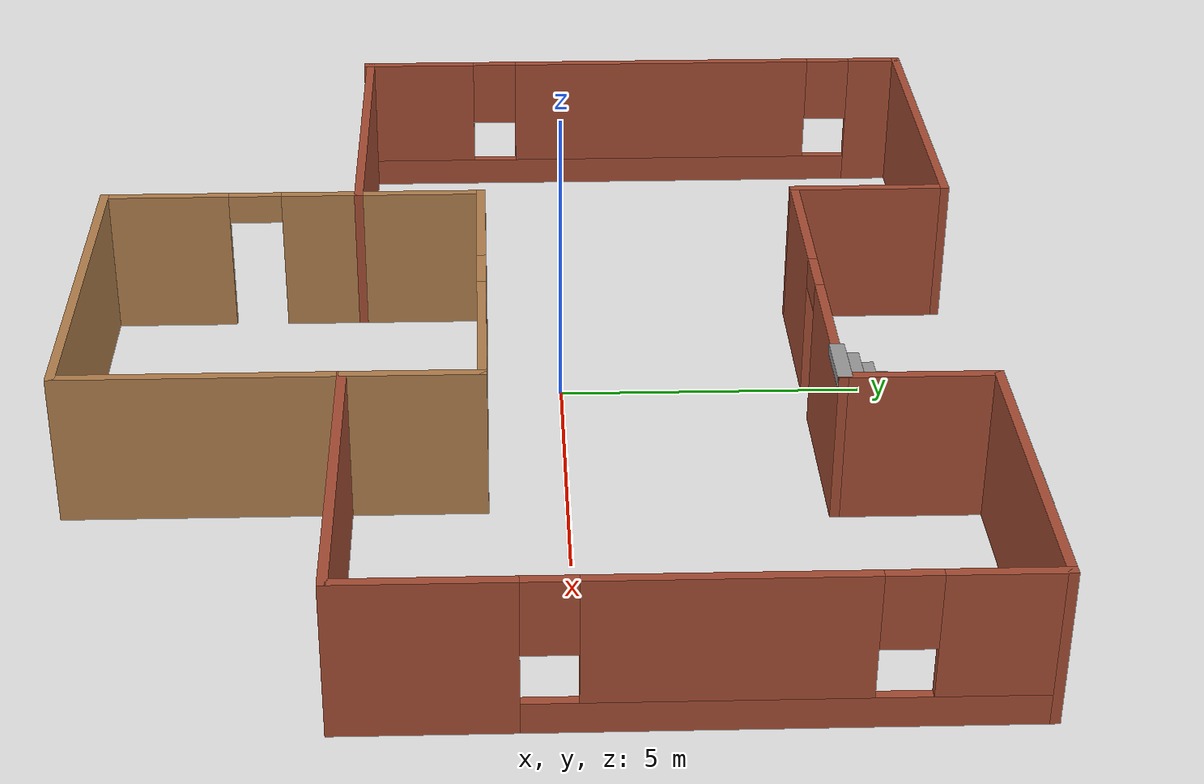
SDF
<?xml version='1.0'?>
<sdf version='1.6'>
  <model name='building'>
    <pose frame=''>0.327964 -0.152465 0 0 -0 0</pose>
    <link name='Stairs_1'>
      <visual name='Stairs_1_Visual_0'>
        <pose frame=''>2.96189 7.54931 0.083333 0 -0 0</pose>
        <geometry>
          <box>
            <size>1 0.233333 0.166667</size>
          </box>
        </geometry>
        <material>
          <script>
            <uri>file://media/materials/scripts/gazebo.material</uri>
            <name>Gazebo/Grey</name>
          </script>
          <ambient>1 1 1 1</ambient>
        </material>
        <meta>
          <layer>0</layer>
        </meta>
      </visual>
      <collision name='Stairs_1_Collision_0'>
        <geometry>
          <box>
            <size>1 0.233333 0.166667</size>
          </box>
        </geometry>
        <pose frame=''>2.96189 7.54931 0.083333 0 -0 0</pose>
      </collision>
      <visual name='Stairs_1_Visual_1'>
        <pose frame=''>2.96189 7.31598 0.25 0 -0 0</pose>
        <geometry>
          <box>
            <size>1 0.233333 0.166667</size>
          </box>
        </geometry>
        <material>
          <script>
            <uri>file://media/materials/scripts/gazebo.material</uri>
            <name>Gazebo/Grey</name>
          </script>
          <ambient>1 1 1 1</ambient>
        </material>
        <meta>
          <layer>0</layer>
        </meta>
      </visual>
      <collision name='Stairs_1_Collision_1'>
        <geometry>
          <box>
            <size>1 0.233333 0.166667</size>
          </box>
        </geometry>
        <pose frame=''>2.96189 7.31598 0.25 0 -0 0</pose>
      </collision>
      <visual name='Stairs_1_Visual_2'>
        <pose frame=''>2.96189 7.08265 0.416667 0 -0 0</pose>
        <geometry>
          <box>
            <size>1 0.233333 0.166667</size>
          </box>
        </geometry>
        <material>
          <script>
            <uri>file://media/materials/scripts/gazebo.material</uri>
            <name>Gazebo/Grey</name>
          </script>
          <ambient>1 1 1 1</ambient>
        </material>
        <meta>
          <layer>0</layer>
        </meta>
      </visual>
      <collision name='Stairs_1_Collision_2'>
        <geometry>
          <box>
            <size>1 0.233333 0.166667</size>
          </box>
        </geometry>
        <pose frame=''>2.96189 7.08265 0.416667 0 -0 0</pose>
      </collision>
      <visual name='Stairs_1_Visual_3'>
        <pose frame=''>2.96189 6.84931 0.583333 0 -0 0</pose>
        <geometry>
          <box>
            <size>1 0.233333 0.166667</size>
          </box>
        </geometry>
        <material>
          <script>
            <uri>file://media/materials/scripts/gazebo.material</uri>
            <name>Gazebo/Grey</name>
          </script>
          <ambient>1 1 1 1</ambient>
        </material>
        <meta>
          <layer>0</layer>
        </meta>
      </visual>
      <collision name='Stairs_1_Collision_3'>
        <geometry>
          <box>
            <size>1 0.233333 0.166667</size>
          </box>
        </geometry>
        <pose frame=''>2.96189 6.84931 0.583333 0 -0 0</pose>
      </collision>
      <visual name='Stairs_1_Visual_4'>
        <pose frame=''>2.96189 6.61598 0.75 0 -0 0</pose>
        <geometry>
          <box>
            <size>1 0.233333 0.166667</size>
          </box>
        </geometry>
        <material>
          <script>
            <uri>file://media/materials/scripts/gazebo.material</uri>
            <name>Gazebo/Grey</name>
          </script>
          <ambient>1 1 1 1</ambient>
        </material>
        <meta>
          <layer>0</layer>
        </meta>
      </visual>
      <collision name='Stairs_1_Collision_4'>
        <geometry>
          <box>
            <size>1 0.233333 0.166667</size>
          </box>
        </geometry>
        <pose frame=''>2.96189 6.61598 0.75 0 -0 0</pose>
      </collision>
      <visual name='Stairs_1_Visual_5'>
        <pose frame=''>2.96189 6.38265 0.916667 0 -0 0</pose>
        <geometry>
          <box>
            <size>1 0.233333 0.166667</size>
          </box>
        </geometry>
        <material>
          <script>
            <uri>file://media/materials/scripts/gazebo.material</uri>
            <name>Gazebo/Grey</name>
          </script>
          <ambient>1 1 1 1</ambient>
        </material>
        <meta>
          <layer>0</layer>
        </meta>
      </visual>
      <collision name='Stairs_1_Collision_5'>
        <geometry>
          <box>
            <size>1 0.233333 0.166667</size>
          </box>
        </geometry>
        <pose frame=''>2.96189 6.38265 0.916667 0 -0 0</pose>
      </collision>
      <visual name='Stairs_1_Visual_6'>
        <pose frame=''>2.96189 6.14931 1.08333 0 -0 0</pose>
        <geometry>
          <box>
            <size>1 0.233333 0.166667</size>
          </box>
        </geometry>
        <material>
          <script>
            <uri>file://media/materials/scripts/gazebo.material</uri>
            <name>Gazebo/Grey</name>
          </script>
          <ambient>1 1 1 1</ambient>
        </material>
        <meta>
          <layer>0</layer>
        </meta>
      </visual>
      <collision name='Stairs_1_Collision_6'>
        <geometry>
          <box>
            <size>1 0.233333 0.166667</size>
          </box>
        </geometry>
        <pose frame=''>2.96189 6.14931 1.08333 0 -0 0</pose>
      </collision>
      <visual name='Stairs_1_Visual_7'>
        <pose frame=''>2.96189 5.91598 1.25 0 -0 0</pose>
        <geometry>
          <box>
            <size>1 0.233333 0.166667</size>
          </box>
        </geometry>
        <material>
          <script>
            <uri>file://media/materials/scripts/gazebo.material</uri>
            <name>Gazebo/Grey</name>
          </script>
          <ambient>1 1 1 1</ambient>
        </material>
        <meta>
          <layer>0</layer>
        </meta>
      </visual>
      <collision name='Stairs_1_Collision_7'>
        <geometry>
          <box>
            <size>1 0.233333 0.166667</size>
          </box>
        </geometry>
        <pose frame=''>2.96189 5.91598 1.25 0 -0 0</pose>
      </collision>
      <visual name='Stairs_1_Visual_8'>
        <pose frame=''>2.96189 5.68264 1.41667 0 -0 0</pose>
        <geometry>
          <box>
            <size>1 0.233333 0.166667</size>
          </box>
        </geometry>
        <material>
          <script>
            <uri>file://media/materials/scripts/gazebo.material</uri>
            <name>Gazebo/Grey</name>
          </script>
          <ambient>1 1 1 1</ambient>
        </material>
        <meta>
          <layer>0</layer>
        </meta>
      </visual>
      <collision name='Stairs_1_Collision_8'>
        <geometry>
          <box>
            <size>1 0.233333 0.166667</size>
          </box>
        </geometry>
        <pose frame=''>2.96189 5.68264 1.41667 0 -0 0</pose>
      </collision>
      <visual name='Stairs_1_Visual_9'>
        <pose frame=''>2.96189 5.44931 1.58333 0 -0 0</pose>
        <geometry>
          <box>
            <size>1 0.233333 0.166667</size>
          </box>
        </geometry>
        <material>
          <script>
            <uri>file://media/materials/scripts/gazebo.material</uri>
            <name>Gazebo/Grey</name>
          </script>
          <ambient>1 1 1 1</ambient>
        </material>
        <meta>
          <layer>0</layer>
        </meta>
      </visual>
      <collision name='Stairs_1_Collision_9'>
        <geometry>
          <box>
            <size>1 0.233333 0.166667</size>
          </box>
        </geometry>
        <pose frame=''>2.96189 5.44931 1.58333 0 -0 0</pose>
      </collision>
      <visual name='Stairs_1_Visual_10'>
        <pose frame=''>2.96189 5.21598 1.75 0 -0 0</pose>
        <geometry>
          <box>
            <size>1 0.233333 0.166667</size>
          </box>
        </geometry>
        <material>
          <script>
            <uri>file://media/materials/scripts/gazebo.material</uri>
            <name>Gazebo/Grey</name>
          </script>
          <ambient>1 1 1 1</ambient>
        </material>
        <meta>
          <layer>0</layer>
        </meta>
      </visual>
      <collision name='Stairs_1_Collision_10'>
        <geometry>
          <box>
            <size>1 0.233333 0.166667</size>
          </box>
        </geometry>
        <pose frame=''>2.96189 5.21598 1.75 0 -0 0</pose>
      </collision>
      <visual name='Stairs_1_Visual_11'>
        <pose frame=''>2.96189 4.98265 1.91667 0 -0 0</pose>
        <geometry>
          <box>
            <size>1 0.233333 0.166667</size>
          </box>
        </geometry>
        <material>
          <script>
            <uri>file://media/materials/scripts/gazebo.material</uri>
            <name>Gazebo/Grey</name>
          </script>
          <ambient>1 1 1 1</ambient>
        </material>
        <meta>
          <layer>0</layer>
        </meta>
      </visual>
      <collision name='Stairs_1_Collision_11'>
        <geometry>
          <box>
            <size>1 0.233333 0.166667</size>
          </box>
        </geometry>
        <pose frame=''>2.96189 4.98265 1.91667 0 -0 0</pose>
      </collision>
      <visual name='Stairs_1_Visual_12'>
        <pose frame=''>2.96189 4.74931 2.08333 0 -0 0</pose>
        <geometry>
          <box>
            <size>1 0.233333 0.166667</size>
          </box>
        </geometry>
        <material>
          <script>
            <uri>file://media/materials/scripts/gazebo.material</uri>
            <name>Gazebo/Grey</name>
          </script>
          <ambient>1 1 1 1</ambient>
        </material>
        <meta>
          <layer>0</layer>
        </meta>
      </visual>
      <collision name='Stairs_1_Collision_12'>
        <geometry>
          <box>
            <size>1 0.233333 0.166667</size>
          </box>
        </geometry>
        <pose frame=''>2.96189 4.74931 2.08333 0 -0 0</pose>
      </collision>
      <visual name='Stairs_1_Visual_13'>
        <pose frame=''>2.96189 4.51598 2.25 0 -0 0</pose>
        <geometry>
          <box>
            <size>1 0.233333 0.166667</size>
          </box>
        </geometry>
        <material>
          <script>
            <uri>file://media/materials/scripts/gazebo.material</uri>
            <name>Gazebo/Grey</name>
          </script>
          <ambient>1 1 1 1</ambient>
        </material>
        <meta>
          <layer>0</layer>
        </meta>
      </visual>
      <collision name='Stairs_1_Collision_13'>
        <geometry>
          <box>
            <size>1 0.233333 0.166667</size>
          </box>
        </geometry>
        <pose frame=''>2.96189 4.51598 2.25 0 -0 0</pose>
      </collision>
      <visual name='Stairs_1_Visual_14'>
        <pose frame=''>2.96189 4.28265 2.41667 0 -0 0</pose>
        <geometry>
          <box>
            <size>1 0.233333 0.166667</size>
          </box>
        </geometry>
        <material>
          <script>
            <uri>file://media/materials/scripts/gazebo.material</uri>
            <name>Gazebo/Grey</name>
          </script>
          <ambient>1 1 1 1</ambient>
        </material>
        <meta>
          <layer>0</layer>
        </meta>
      </visual>
      <collision name='Stairs_1_Collision_14'>
        <geometry>
          <box>
            <size>1 0.233333 0.166667</size>
          </box>
        </geometry>
        <pose frame=''>2.96189 4.28265 2.41667 0 -0 0</pose>
      </collision>
    </link>
    <link name='Wall_10'>
      <collision name='Wall_10_Collision'>
        <geometry>
          <box>
            <size>2.25 0.15 2.5</size>
          </box>
        </geometry>
        <pose frame=''>0 0 1.25 0 -0 0</pose>
      </collision>
      <visual name='Wall_10_Visual'>
        <pose frame=''>0 0 1.25 0 -0 0</pose>
        <geometry>
          <box>
            <size>2.25 0.15 2.5</size>
          </box>
        </geometry>
        <material>
          <script>
            <uri>file://media/materials/scripts/gazebo.material</uri>
            <name>Gazebo/Wood</name>
          </script>
          <ambient>0.435294 0.796078 0.67451 1</ambient>
        </material>
        <meta>
          <layer>0</layer>
        </meta>
      </visual>
      <pose frame=''>-2.93938 -2.19098 0 0 -0 1.5708</pose>
    </link>
    <link name='Wall_11'>
      <pose frame=''>0.110622 -1.14098 0 0 -0 0</pose>
      <visual name='Wall_11_Visual_0'>
        <pose frame=''>-1.92042 0 1.25 0 -0 0</pose>
        <geometry>
          <box>
            <size>2.40917 0.15 2.5</size>
          </box>
        </geometry>
        <material>
          <script>
            <uri>file://media/materials/scripts/gazebo.material</uri>
            <name>Gazebo/Wood</name>
          </script>
          <ambient>0.435294 0.796078 0.67451 1</ambient>
        </material>
        <meta>
          <layer>0</layer>
        </meta>
      </visual>
      <collision name='Wall_11_Collision_0'>
        <geometry>
          <box>
            <size>2.40917 0.15 2.5</size>
          </box>
        </geometry>
        <pose frame=''>-1.92042 0 1.25 0 -0 0</pose>
      </collision>
      <visual name='Wall_11_Visual_1'>
        <pose frame=''>1.65458 0 1.25 0 -0 0</pose>
        <geometry>
          <box>
            <size>2.94083 0.15 2.5</size>
          </box>
        </geometry>
        <material>
          <script>
            <uri>file://media/materials/scripts/gazebo.material</uri>
            <name>Gazebo/Wood</name>
          </script>
          <ambient>0.435294 0.796078 0.67451 1</ambient>
        </material>
        <meta>
          <layer>0</layer>
        </meta>
      </visual>
      <collision name='Wall_11_Collision_1'>
        <geometry>
          <box>
            <size>2.94083 0.15 2.5</size>
          </box>
        </geometry>
        <pose frame=''>1.65458 0 1.25 0 -0 0</pose>
      </collision>
      <visual name='Wall_11_Visual_2'>
        <pose frame=''>-0.265832 0 2.25 0 -0 0</pose>
        <geometry>
          <box>
            <size>0.9 0.15 0.5</size>
          </box>
        </geometry>
        <material>
          <script>
            <uri>file://media/materials/scripts/gazebo.material</uri>
            <name>Gazebo/Wood</name>
          </script>
          <ambient>0.435294 0.796078 0.67451 1</ambient>
        </material>
        <meta>
          <layer>0</layer>
        </meta>
      </visual>
      <collision name='Wall_11_Collision_2'>
        <geometry>
          <box>
            <size>0.9 0.15 0.5</size>
          </box>
        </geometry>
        <pose frame=''>-0.265832 0 2.25 0 -0 0</pose>
      </collision>
    </link>
    <link name='Wall_12'>
      <collision name='Wall_12_Collision'>
        <geometry>
          <box>
            <size>2.25 0.15 2.5</size>
          </box>
        </geometry>
        <pose frame=''>0 0 1.25 0 -0 0</pose>
      </collision>
      <visual name='Wall_12_Visual'>
        <pose frame=''>0 0 1.25 0 -0 0</pose>
        <geometry>
          <box>
            <size>2.25 0.15 2.5</size>
          </box>
        </geometry>
        <material>
          <script>
            <uri>file://media/materials/scripts/gazebo.material</uri>
            <name>Gazebo/Wood</name>
          </script>
          <ambient>1 0.764706 0.305882 1</ambient>
        </material>
        <meta>
          <layer>0</layer>
        </meta>
      </visual>
      <pose frame=''>3.16062 -2.19098 0 0 0 -1.5708</pose>
    </link>
    <link name='Wall_13'>
      <collision name='Wall_13_Collision'>
        <geometry>
          <box>
            <size>5.5 0.15 2.5</size>
          </box>
        </geometry>
        <pose frame=''>0 0 1.25 0 -0 0</pose>
      </collision>
      <visual name='Wall_13_Visual'>
        <pose frame=''>0 0 1.25 0 -0 0</pose>
        <geometry>
          <box>
            <size>5.5 0.15 2.5</size>
          </box>
        </geometry>
        <material>
          <script>
            <uri>file://media/materials/scripts/gazebo.material</uri>
            <name>Gazebo/Bricks</name>
          </script>
          <ambient>0.996078 0.47451 0.0196078 1</ambient>
        </material>
        <meta>
          <layer>0</layer>
        </meta>
      </visual>
      <pose frame=''>5.83562 -3.24098 0 0 -0 0</pose>
    </link>
    <link name='Wall_14'>
      <pose frame=''>8.51062 1.68402 0 0 -0 1.5708</pose>
      <visual name='Wall_14_Visual_0'>
        <pose frame=''>-3.67786 0 1.25 0 -0 0</pose>
        <geometry>
          <box>
            <size>2.64428 0.15 2.5</size>
          </box>
        </geometry>
        <material>
          <script>
            <uri>file://media/materials/scripts/gazebo.material</uri>
            <name>Gazebo/Bricks</name>
          </script>
          <ambient>0.996078 0.47451 0.0196078 1</ambient>
        </material>
        <meta>
          <layer>0</layer>
        </meta>
      </visual>
      <collision name='Wall_14_Collision_0'>
        <geometry>
          <box>
            <size>2.64428 0.15 2.5</size>
          </box>
        </geometry>
        <pose frame=''>-3.67786 0 1.25 0 -0 0</pose>
      </collision>
      <visual name='Wall_14_Visual_1'>
        <pose frame=''>1.32214 0 0.25 0 -0 0</pose>
        <geometry>
          <box>
            <size>7.35572 0.15 0.5</size>
          </box>
        </geometry>
        <material>
          <script>
            <uri>file://media/materials/scripts/gazebo.material</uri>
            <name>Gazebo/Bricks</name>
          </script>
          <ambient>0.996078 0.47451 0.0196078 1</ambient>
        </material>
        <meta>
          <layer>0</layer>
        </meta>
      </visual>
      <collision name='Wall_14_Collision_1'>
        <geometry>
          <box>
            <size>7.35572 0.15 0.5</size>
          </box>
        </geometry>
        <pose frame=''>1.32214 0 0.25 0 -0 0</pose>
      </collision>
      <visual name='Wall_14_Visual_2'>
        <pose frame=''>0.440258 0 1.5 0 -0 0</pose>
        <geometry>
          <box>
            <size>3.99196 0.15 2</size>
          </box>
        </geometry>
        <material>
          <script>
            <uri>file://media/materials/scripts/gazebo.material</uri>
            <name>Gazebo/Bricks</name>
          </script>
          <ambient>0.996078 0.47451 0.0196078 1</ambient>
        </material>
        <meta>
          <layer>0</layer>
        </meta>
      </visual>
      <collision name='Wall_14_Collision_2'>
        <geometry>
          <box>
            <size>3.99196 0.15 2</size>
          </box>
        </geometry>
        <pose frame=''>0.440258 0 1.5 0 -0 0</pose>
      </collision>
      <visual name='Wall_14_Visual_3'>
        <pose frame=''>4.11812 0 1.5 0 -0 0</pose>
        <geometry>
          <box>
            <size>1.76376 0.15 2</size>
          </box>
        </geometry>
        <material>
          <script>
            <uri>file://media/materials/scripts/gazebo.material</uri>
            <name>Gazebo/Bricks</name>
          </script>
          <ambient>0.996078 0.47451 0.0196078 1</ambient>
        </material>
        <meta>
          <layer>0</layer>
        </meta>
      </visual>
      <collision name='Wall_14_Collision_3'>
        <geometry>
          <box>
            <size>1.76376 0.15 2</size>
          </box>
        </geometry>
        <pose frame=''>4.11812 0 1.5 0 -0 0</pose>
      </collision>
      <visual name='Wall_14_Visual_4'>
        <pose frame=''>-1.95572 0 1.9 0 -0 0</pose>
        <geometry>
          <box>
            <size>0.8 0.15 1.2</size>
          </box>
        </geometry>
        <material>
          <script>
            <uri>file://media/materials/scripts/gazebo.material</uri>
            <name>Gazebo/Bricks</name>
          </script>
          <ambient>0.996078 0.47451 0.0196078 1</ambient>
        </material>
        <meta>
          <layer>0</layer>
        </meta>
      </visual>
      <collision name='Wall_14_Collision_4'>
        <geometry>
          <box>
            <size>0.8 0.15 1.2</size>
          </box>
        </geometry>
        <pose frame=''>-1.95572 0 1.9 0 -0 0</pose>
      </collision>
      <visual name='Wall_14_Visual_5'>
        <pose frame=''>2.83624 0 1.9 0 -0 0</pose>
        <geometry>
          <box>
            <size>0.8 0.15 1.2</size>
          </box>
        </geometry>
        <material>
          <script>
            <uri>file://media/materials/scripts/gazebo.material</uri>
            <name>Gazebo/Bricks</name>
          </script>
          <ambient>0.996078 0.47451 0.0196078 1</ambient>
        </material>
        <meta>
          <layer>0</layer>
        </meta>
      </visual>
      <collision name='Wall_14_Collision_5'>
        <geometry>
          <box>
            <size>0.8 0.15 1.2</size>
          </box>
        </geometry>
        <pose frame=''>2.83624 0 1.9 0 -0 0</pose>
      </collision>
    </link>
    <link name='Wall_15'>
      <collision name='Wall_15_Collision'>
        <geometry>
          <box>
            <size>5.25 0.15 2.5</size>
          </box>
        </geometry>
        <pose frame=''>0 0 1.25 0 -0 0</pose>
      </collision>
      <visual name='Wall_15_Visual'>
        <pose frame=''>0 0 1.25 0 -0 0</pose>
        <geometry>
          <box>
            <size>5.25 0.15 2.5</size>
          </box>
        </geometry>
        <material>
          <script>
            <uri>file://media/materials/scripts/gazebo.material</uri>
            <name>Gazebo/Bricks</name>
          </script>
          <ambient>0.760784 0.662745 0.627451 1</ambient>
        </material>
        <meta>
          <layer>0</layer>
        </meta>
      </visual>
      <pose frame=''>5.96062 6.60902 0 0 -0 3.14159</pose>
    </link>
    <link name='Wall_16'>
      <collision name='Wall_16_Collision'>
        <geometry>
          <box>
            <size>2.5 0.15 2.5</size>
          </box>
        </geometry>
        <pose frame=''>0 0 1.25 0 -0 0</pose>
      </collision>
      <visual name='Wall_16_Visual'>
        <pose frame=''>0 0 1.25 0 -0 0</pose>
        <geometry>
          <box>
            <size>2.5 0.15 2.5</size>
          </box>
        </geometry>
        <material>
          <script>
            <uri>file://media/materials/scripts/gazebo.material</uri>
            <name>Gazebo/Bricks</name>
          </script>
          <ambient>1 1 1 1</ambient>
        </material>
        <meta>
          <layer>0</layer>
        </meta>
      </visual>
      <pose frame=''>3.41062 5.43402 0 0 0 -1.5708</pose>
    </link>
    <link name='Wall_17'>
      <pose frame=''>0.235622 4.25902 0 0 -0 3.14159</pose>
      <visual name='Wall_17_Visual_0'>
        <pose frame=''>-1.79416 0 1.25 0 -0 0</pose>
        <geometry>
          <box>
            <size>2.91169 0.15 2.5</size>
          </box>
        </geometry>
        <material>
          <script>
            <uri>file://media/materials/scripts/gazebo.material</uri>
            <name>Gazebo/Bricks</name>
          </script>
          <ambient>0.435294 0.796078 0.67451 1</ambient>
        </material>
        <meta>
          <layer>0</layer>
        </meta>
      </visual>
      <collision name='Wall_17_Collision_0'>
        <geometry>
          <box>
            <size>2.91169 0.15 2.5</size>
          </box>
        </geometry>
        <pose frame=''>-1.79416 0 1.25 0 -0 0</pose>
      </collision>
      <visual name='Wall_17_Visual_1'>
        <pose frame=''>1.90584 0 1.25 0 -0 0</pose>
        <geometry>
          <box>
            <size>2.68831 0.15 2.5</size>
          </box>
        </geometry>
        <material>
          <script>
            <uri>file://media/materials/scripts/gazebo.material</uri>
            <name>Gazebo/Bricks</name>
          </script>
          <ambient>0.435294 0.796078 0.67451 1</ambient>
        </material>
        <meta>
          <layer>0</layer>
        </meta>
      </visual>
      <collision name='Wall_17_Collision_1'>
        <geometry>
          <box>
            <size>2.68831 0.15 2.5</size>
          </box>
        </geometry>
        <pose frame=''>1.90584 0 1.25 0 -0 0</pose>
      </collision>
      <visual name='Wall_17_Visual_2'>
        <pose frame=''>0.111689 0 2.25 0 -0 0</pose>
        <geometry>
          <box>
            <size>0.9 0.15 0.5</size>
          </box>
        </geometry>
        <material>
          <script>
            <uri>file://media/materials/scripts/gazebo.material</uri>
            <name>Gazebo/Bricks</name>
          </script>
          <ambient>0.435294 0.796078 0.67451 1</ambient>
        </material>
        <meta>
          <layer>0</layer>
        </meta>
      </visual>
      <collision name='Wall_17_Collision_2'>
        <geometry>
          <box>
            <size>0.9 0.15 0.5</size>
          </box>
        </geometry>
        <pose frame=''>0.111689 0 2.25 0 -0 0</pose>
      </collision>
    </link>
    <link name='Wall_18'>
      <collision name='Wall_18_Collision'>
        <geometry>
          <box>
            <size>2.75 0.15 2.5</size>
          </box>
        </geometry>
        <pose frame=''>0 0 1.25 0 -0 0</pose>
      </collision>
      <visual name='Wall_18_Visual'>
        <pose frame=''>0 0 1.25 0 -0 0</pose>
        <geometry>
          <box>
            <size>2.75 0.15 2.5</size>
          </box>
        </geometry>
        <material>
          <script>
            <uri>file://media/materials/scripts/gazebo.material</uri>
            <name>Gazebo/Bricks</name>
          </script>
          <ambient>0.760784 0.662745 0.627451 1</ambient>
        </material>
        <meta>
          <layer>0</layer>
        </meta>
      </visual>
      <pose frame=''>-2.93938 5.55902 0 0 -0 1.5708</pose>
    </link>
    <link name='Wall_19'>
      <collision name='Wall_19_Collision'>
        <geometry>
          <box>
            <size>5.72163 0.15 2.5</size>
          </box>
        </geometry>
        <pose frame=''>0 0 1.25 0 -0 0</pose>
      </collision>
      <visual name='Wall_19_Visual'>
        <pose frame=''>0 0 1.25 0 -0 0</pose>
        <geometry>
          <box>
            <size>5.72163 0.15 2.5</size>
          </box>
        </geometry>
        <material>
          <script>
            <uri>file://media/materials/scripts/gazebo.material</uri>
            <name>Gazebo/Bricks</name>
          </script>
          <ambient>1 0.764706 0.305882 1</ambient>
        </material>
        <meta>
          <layer>0</layer>
        </meta>
      </visual>
      <pose frame=''>-5.72481 6.85902 0 0 -0 3.14159</pose>
    </link>
    <link name='Wall_20'>
      <pose frame=''>-8.51023 1.7625 0 0 0 -1.5708</pose>
      <visual name='Wall_20_Visual_0'>
        <pose frame=''>-4.65315 0 1.25 0 -0 0</pose>
        <geometry>
          <box>
            <size>0.94371 0.15 2.5</size>
          </box>
        </geometry>
        <material>
          <script>
            <uri>file://media/materials/scripts/gazebo.material</uri>
            <name>Gazebo/Bricks</name>
          </script>
          <ambient>1 0.764706 0.305882 1</ambient>
        </material>
        <meta>
          <layer>0</layer>
        </meta>
      </visual>
      <collision name='Wall_20_Collision_0'>
        <geometry>
          <box>
            <size>0.94371 0.15 2.5</size>
          </box>
        </geometry>
        <pose frame=''>-4.65315 0 1.25 0 -0 0</pose>
      </collision>
      <visual name='Wall_20_Visual_1'>
        <pose frame=''>0.471855 0 0.25 0 -0 0</pose>
        <geometry>
          <box>
            <size>9.30629 0.15 0.5</size>
          </box>
        </geometry>
        <material>
          <script>
            <uri>file://media/materials/scripts/gazebo.material</uri>
            <name>Gazebo/Bricks</name>
          </script>
          <ambient>1 0.764706 0.305882 1</ambient>
        </material>
        <meta>
          <layer>0</layer>
        </meta>
      </visual>
      <collision name='Wall_20_Collision_1'>
        <geometry>
          <box>
            <size>9.30629 0.15 0.5</size>
          </box>
        </geometry>
        <pose frame=''>0.471855 0 0.25 0 -0 0</pose>
      </collision>
      <visual name='Wall_20_Visual_2'>
        <pose frame=''>-0.57114 0 1.5 0 -0 0</pose>
        <geometry>
          <box>
            <size>5.6203 0.15 2</size>
          </box>
        </geometry>
        <material>
          <script>
            <uri>file://media/materials/scripts/gazebo.material</uri>
            <name>Gazebo/Bricks</name>
          </script>
          <ambient>1 0.764706 0.305882 1</ambient>
        </material>
        <meta>
          <layer>0</layer>
        </meta>
      </visual>
      <collision name='Wall_20_Collision_2'>
        <geometry>
          <box>
            <size>5.6203 0.15 2</size>
          </box>
        </geometry>
        <pose frame=''>-0.57114 0 1.5 0 -0 0</pose>
      </collision>
      <visual name='Wall_20_Visual_3'>
        <pose frame=''>4.082 0 1.5 0 -0 0</pose>
        <geometry>
          <box>
            <size>2.08599 0.15 2</size>
          </box>
        </geometry>
        <material>
          <script>
            <uri>file://media/materials/scripts/gazebo.material</uri>
            <name>Gazebo/Bricks</name>
          </script>
          <ambient>1 0.764706 0.305882 1</ambient>
        </material>
        <meta>
          <layer>0</layer>
        </meta>
      </visual>
      <collision name='Wall_20_Collision_3'>
        <geometry>
          <box>
            <size>2.08599 0.15 2</size>
          </box>
        </geometry>
        <pose frame=''>4.082 0 1.5 0 -0 0</pose>
      </collision>
      <visual name='Wall_20_Visual_4'>
        <pose frame=''>-3.78129 0 1.9 0 -0 0</pose>
        <geometry>
          <box>
            <size>0.8 0.15 1.2</size>
          </box>
        </geometry>
        <material>
          <script>
            <uri>file://media/materials/scripts/gazebo.material</uri>
            <name>Gazebo/Bricks</name>
          </script>
          <ambient>1 0.764706 0.305882 1</ambient>
        </material>
        <meta>
          <layer>0</layer>
        </meta>
      </visual>
      <collision name='Wall_20_Collision_4'>
        <geometry>
          <box>
            <size>0.8 0.15 1.2</size>
          </box>
        </geometry>
        <pose frame=''>-3.78129 0 1.9 0 -0 0</pose>
      </collision>
      <visual name='Wall_20_Visual_5'>
        <pose frame=''>2.63901 0 1.9 0 -0 0</pose>
        <geometry>
          <box>
            <size>0.8 0.15 1.2</size>
          </box>
        </geometry>
        <material>
          <script>
            <uri>file://media/materials/scripts/gazebo.material</uri>
            <name>Gazebo/Bricks</name>
          </script>
          <ambient>1 0.764706 0.305882 1</ambient>
        </material>
        <meta>
          <layer>0</layer>
        </meta>
      </visual>
      <collision name='Wall_20_Collision_5'>
        <geometry>
          <box>
            <size>0.8 0.15 1.2</size>
          </box>
        </geometry>
        <pose frame=''>2.63901 0 1.9 0 -0 0</pose>
      </collision>
    </link>
    <link name='Wall_28'>
      <pose frame=''>-2.93938 -5.41598 0 0 0 -1.5708</pose>
      <visual name='Wall_28_Visual_0'>
        <pose frame=''>-1.54942 0 1.25 0 -0 0</pose>
        <geometry>
          <box>
            <size>1.40116 0.15 2.5</size>
          </box>
        </geometry>
        <material>
          <script>
            <uri>file://media/materials/scripts/gazebo.material</uri>
            <name>Gazebo/Wood</name>
          </script>
          <ambient>0.435294 0.796078 0.67451 1</ambient>
        </material>
        <meta>
          <layer>0</layer>
        </meta>
      </visual>
      <collision name='Wall_28_Collision_0'>
        <geometry>
          <box>
            <size>1.40116 0.15 2.5</size>
          </box>
        </geometry>
        <pose frame=''>-1.54942 0 1.25 0 -0 0</pose>
      </collision>
      <visual name='Wall_28_Visual_1'>
        <pose frame=''>1.15058 0 1.25 0 -0 0</pose>
        <geometry>
          <box>
            <size>2.19884 0.15 2.5</size>
          </box>
        </geometry>
        <material>
          <script>
            <uri>file://media/materials/scripts/gazebo.material</uri>
            <name>Gazebo/Wood</name>
          </script>
          <ambient>0.435294 0.796078 0.67451 1</ambient>
        </material>
        <meta>
          <layer>0</layer>
        </meta>
      </visual>
      <collision name='Wall_28_Collision_1'>
        <geometry>
          <box>
            <size>2.19884 0.15 2.5</size>
          </box>
        </geometry>
        <pose frame=''>1.15058 0 1.25 0 -0 0</pose>
      </collision>
      <visual name='Wall_28_Visual_2'>
        <pose frame=''>-0.398838 0 2.25 0 -0 0</pose>
        <geometry>
          <box>
            <size>0.9 0.15 0.5</size>
          </box>
        </geometry>
        <material>
          <script>
            <uri>file://media/materials/scripts/gazebo.material</uri>
            <name>Gazebo/Wood</name>
          </script>
          <ambient>0.435294 0.796078 0.67451 1</ambient>
        </material>
        <meta>
          <layer>0</layer>
        </meta>
      </visual>
      <collision name='Wall_28_Collision_2'>
        <geometry>
          <box>
            <size>0.9 0.15 0.5</size>
          </box>
        </geometry>
        <pose frame=''>-0.398838 0 2.25 0 -0 0</pose>
      </collision>
    </link>
    <link name='Wall_29'>
      <collision name='Wall_29_Collision'>
        <geometry>
          <box>
            <size>6.25 0.15 2.5</size>
          </box>
        </geometry>
        <pose frame=''>0 0 1.25 0 -0 0</pose>
      </collision>
      <visual name='Wall_29_Visual'>
        <pose frame=''>0 0 1.25 0 -0 0</pose>
        <geometry>
          <box>
            <size>6.25 0.15 2.5</size>
          </box>
        </geometry>
        <material>
          <script>
            <uri>file://media/materials/scripts/gazebo.material</uri>
            <name>Gazebo/Wood</name>
          </script>
          <ambient>1 0.764706 0.305882 1</ambient>
        </material>
        <meta>
          <layer>0</layer>
        </meta>
      </visual>
      <pose frame=''>0.110622 -7.59098 0 0 -0 0</pose>
    </link>
    <link name='Wall_30'>
      <collision name='Wall_30_Collision'>
        <geometry>
          <box>
            <size>4.5 0.15 2.5</size>
          </box>
        </geometry>
        <pose frame=''>0 0 1.25 0 -0 0</pose>
      </collision>
      <visual name='Wall_30_Visual'>
        <pose frame=''>0 0 1.25 0 -0 0</pose>
        <geometry>
          <box>
            <size>4.5 0.15 2.5</size>
          </box>
        </geometry>
        <material>
          <script>
            <uri>file://media/materials/scripts/gazebo.material</uri>
            <name>Gazebo/Wood</name>
          </script>
          <ambient>1 0.764706 0.305882 1</ambient>
        </material>
        <meta>
          <layer>0</layer>
        </meta>
      </visual>
      <pose frame=''>3.16062 -5.41598 0 0 -0 1.5708</pose>
    </link>
    <link name='Wall_8'>
      <collision name='Wall_8_Collision'>
        <geometry>
          <box>
            <size>5.72163 0.15 2.5</size>
          </box>
        </geometry>
        <pose frame=''>0 0 1.25 0 -0 0</pose>
      </collision>
      <visual name='Wall_8_Visual'>
        <pose frame=''>0 0 1.25 0 -0 0</pose>
        <geometry>
          <box>
            <size>5.72163 0.15 2.5</size>
          </box>
        </geometry>
        <material>
          <script>
            <uri>file://media/materials/scripts/gazebo.material</uri>
            <name>Gazebo/Bricks</name>
          </script>
          <ambient>0.996078 0.47451 0.0196078 1</ambient>
        </material>
        <meta>
          <layer>0</layer>
        </meta>
      </visual>
      <pose frame=''>-5.72481 -3.24098 0 0 -0 0</pose>
    </link>
    <static>1</static>
  </model>
</sdf>
